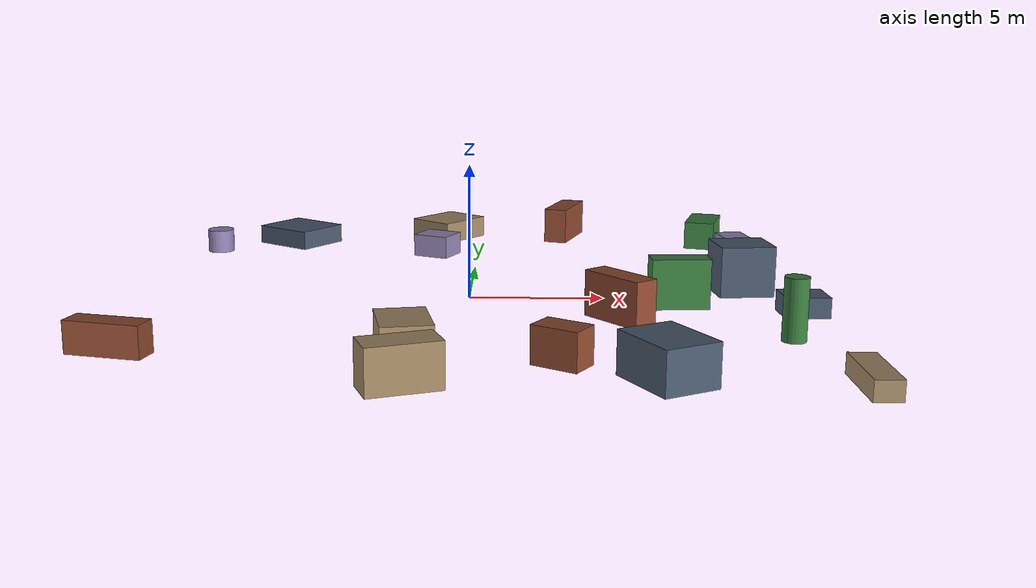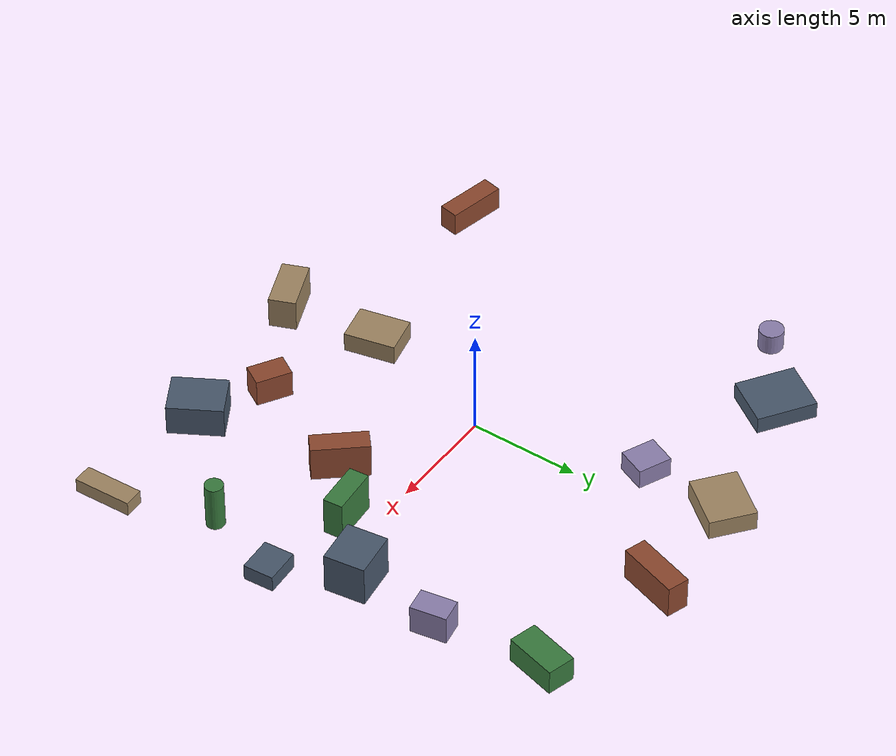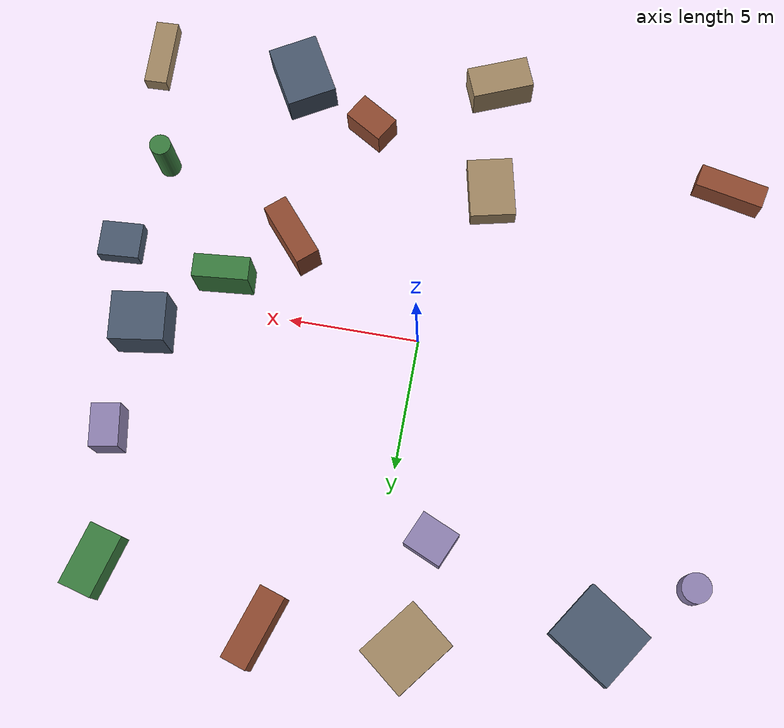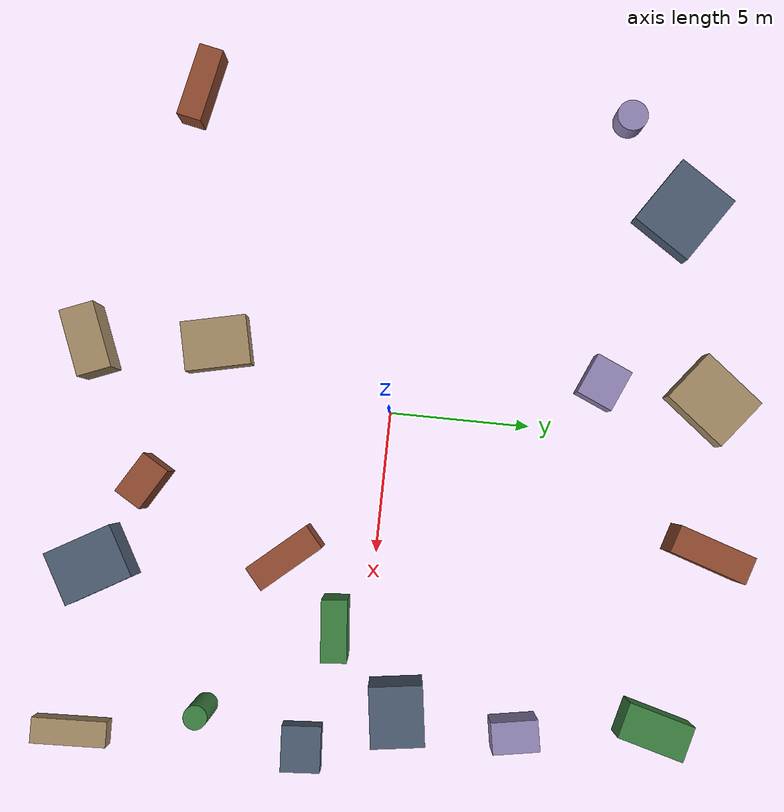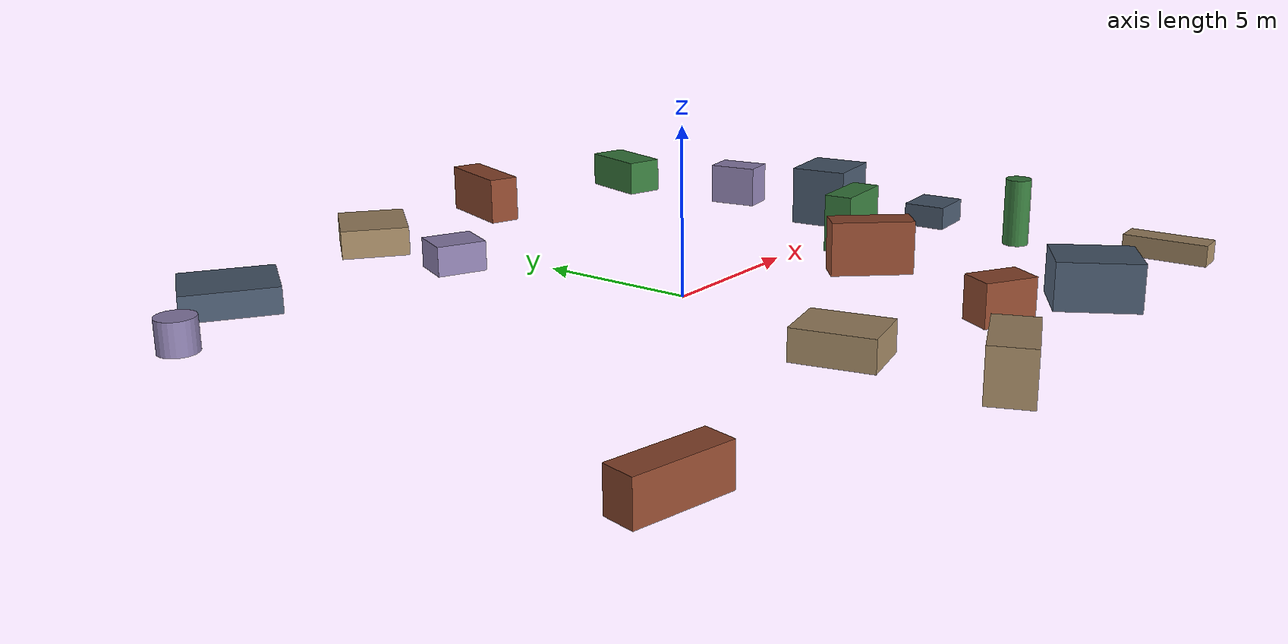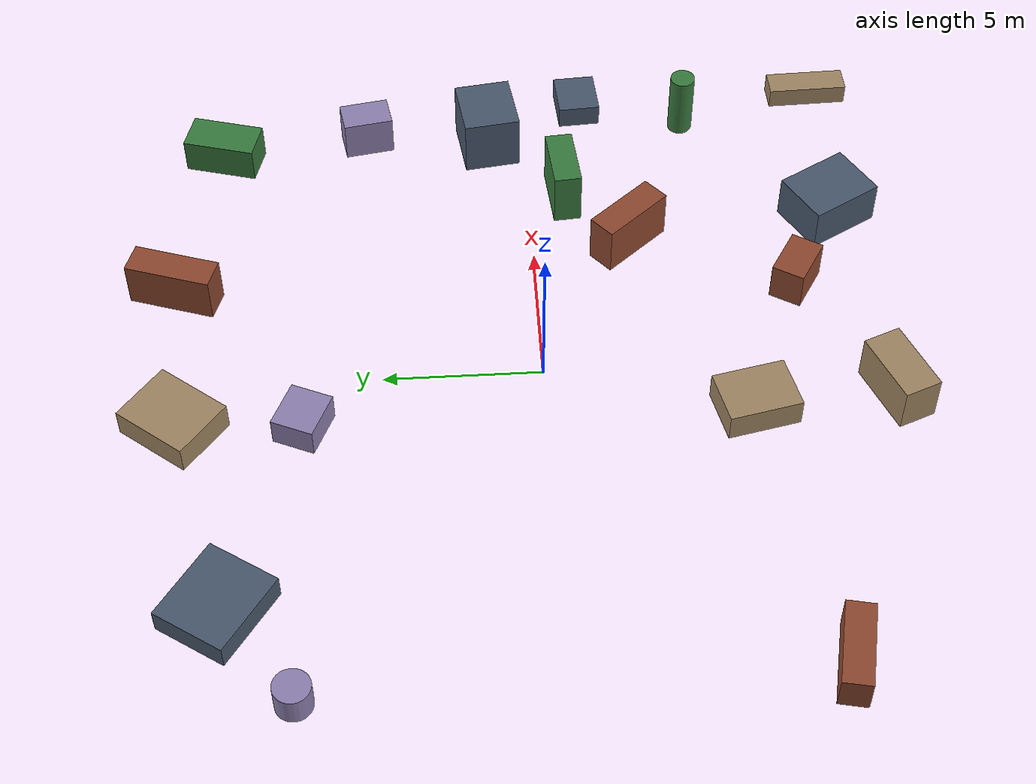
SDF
<sdf version="1.10">
 <world name="robotx_task1_uav_view">
  <gravity>0 0 -9.81</gravity>
  <physics name="physics" type="ode">
   <max_step_size>0.002</max_step_size>
   <real_time_factor>1.0</real_time_factor>
  </physics>
  <scene>
   <ambient>0.18 0.22 0.18 1.0</ambient>
   <background>0.35 0.55 0.40 1.0</background>
   <shadows>true</shadows>
   <grid>false</grid>
  </scene>
  <light name="sun" type="directional">
   <pose>0 0 300 0 0 0</pose>
   <diffuse>0.55 0.75 0.60 1.0</diffuse>
   <specular>0.28 0.45 0.32 1.0</specular>
   <direction>0.20 -0.06 -1.0</direction>
   <attenuation>
    <range>2500</range>
    <constant>0.85</constant>
    <linear>0.001</linear>
    <quadratic>0.00005</quadratic>
   </attenuation>
  </light>
  <plugin filename="gz-sim-physics-system" name="gz::sim::systems::Physics"/>
  <plugin filename="gz-sim-user-commands-system" name="gz::sim::systems::UserCommands"/>
  <plugin filename="gz-sim-scene-broadcaster-system" name="gz::sim::systems::SceneBroadcaster"/>
  <plugin filename="gz-sim-sensors-system" name="gz::sim::systems::Sensors">
   <render_engine>ogre2</render_engine>
  </plugin>
  <model name="scene_clutter_box_000">
   <static>true</static>
   <pose>12.218 -10.011 0.357 0 0 -1.536951</pose>
   <link name="link">
    <visual name="v">
     <geometry><box><size>2.641 0.891 0.675</size></box></geometry>
     <material><ambient>0.45 0.38 0.32 1.0</ambient><diffuse>0.62 0.52 0.38 1.0</diffuse></material>
    </visual>
   </link>
  </model>
  <model name="scene_clutter_box_001">
   <static>true</static>
   <pose>6.324 -9.820 0.737 0 0 -2.622603</pose>
   <link name="link">
    <visual name="v">
     <geometry><box><size>1.948 2.469 1.433</size></box></geometry>
     <material><ambient>0.18 0.22 0.28 1.0</ambient><diffuse>0.28 0.34 0.42 1.0</diffuse></material>
    </visual>
   </link>
  </model>
  <model name="scene_clutter_box_002">
   <static>true</static>
   <pose>3.827 11.567 0.777 0 0 -1.888255</pose>
   <link name="link">
    <visual name="v">
     <geometry><box><size>2.803 0.992 1.515</size></box></geometry>
     <material><ambient>0.35 0.16 0.12 1.0</ambient><diffuse>0.55 0.28 0.18 1.0</diffuse></material>
    </visual>
   </link>
  </model>
  <model name="scene_clutter_box_003">
   <static>true</static>
   <pose>10.073 10.220 0.610 0 0 -0.265980</pose>
   <link name="link">
    <visual name="v">
     <geometry><box><size>1.269 2.385 1.180</size></box></geometry>
     <material><ambient>0.12 0.30 0.14 1.0</ambient><diffuse>0.22 0.48 0.24 1.0</diffuse></material>
    </visual>
   </link>
  </model>
  <model name="scene_clutter_box_004">
   <static>true</static>
   <pose>-1.790 7.430 0.485 0 0 -0.414090</pose>
   <link name="link">
    <visual name="v">
     <geometry><box><size>1.548 1.366 0.929</size></box></geometry>
     <material><ambient>0.40 0.35 0.50 1.0</ambient><diffuse>0.55 0.50 0.68 1.0</diffuse></material>
    </visual>
   </link>
  </model>
  <model name="scene_clutter_box_005">
   <static>true</static>
   <pose>-1.814 -6.374 0.479 0 0 1.787820</pose>
   <link name="link">
    <visual name="v">
     <geometry><box><size>2.334 1.764 0.919</size></box></geometry>
     <material><ambient>0.45 0.38 0.32 1.0</ambient><diffuse>0.62 0.52 0.38 1.0</diffuse></material>
    </visual>
   </link>
  </model>
  <model name="scene_clutter_box_006">
   <static>true</static>
   <pose>11.963 -1.905 0.396 0 0 -3.077153</pose>
   <link name="link">
    <visual name="v">
     <geometry><box><size>1.593 1.379 0.751</size></box></geometry>
     <material><ambient>0.18 0.22 0.28 1.0</ambient><diffuse>0.28 0.34 0.42 1.0</diffuse></material>
    </visual>
   </link>
  </model>
  <model name="scene_clutter_box_007">
   <static>true</static>
   <pose>3.269 -8.334 0.664 0 0 -0.538725</pose>
   <link name="link">
    <visual name="v">
     <geometry><box><size>1.640 1.068 1.288</size></box></geometry>
     <material><ambient>0.35 0.16 0.12 1.0</ambient><diffuse>0.55 0.28 0.18 1.0</diffuse></material>
    </visual>
   </link>
  </model>
  <model name="scene_clutter_cyl_008">
   <static>true</static>
   <pose>10.907 -5.434 1.133 0 0 1.751120</pose>
   <link name="link">
    <visual name="v">
     <geometry><cylinder><radius>0.410</radius><length>2.166</length></cylinder></geometry>
     <material><ambient>0.12 0.30 0.14 1.0</ambient><diffuse>0.22 0.48 0.24 1.0</diffuse></material>
    </visual>
   </link>
  </model>
  <model name="scene_clutter_box_009">
   <static>true</static>
   <pose>10.679 5.389 0.700 0 0 0.167667</pose>
   <link name="link">
    <visual name="v">
     <geometry><box><size>1.084 1.626 1.359</size></box></geometry>
     <material><ambient>0.40 0.35 0.50 1.0</ambient><diffuse>0.55 0.50 0.68 1.0</diffuse></material>
    </visual>
   </link>
  </model>
  <model name="scene_clutter_box_010">
   <static>true</static>
   <pose>-1.452 -10.805 0.766 0 0 0.383314</pose>
   <link name="link">
    <visual name="v">
     <geometry><box><size>2.401 1.227 1.492</size></box></geometry>
     <material><ambient>0.45 0.38 0.32 1.0</ambient><diffuse>0.62 0.52 0.38 1.0</diffuse></material>
    </visual>
   </link>
  </model>
  <model name="scene_clutter_box_011">
   <static>true</static>
   <pose>10.285 1.271 0.977 0 0 0.136847</pose>
   <link name="link">
    <visual name="v">
     <geometry><box><size>2.062 1.844 1.914</size></box></geometry>
     <material><ambient>0.18 0.22 0.28 1.0</ambient><diffuse>0.28 0.34 0.42 1.0</diffuse></material>
    </visual>
   </link>
  </model>
  <model name="scene_clutter_box_012">
   <static>true</static>
   <pose>-11.013 -7.904 0.577 0 0 -0.203225</pose>
   <link name="link">
    <visual name="v">
     <geometry><box><size>2.667 0.893 1.114</size></box></geometry>
     <material><ambient>0.35 0.16 0.12 1.0</ambient><diffuse>0.55 0.28 0.18 1.0</diffuse></material>
    </visual>
   </link>
  </model>
  <model name="scene_clutter_box_013">
   <static>true</static>
   <pose>7.662 -1.128 0.944 0 0 0.087161</pose>
   <link name="link">
    <visual name="v">
     <geometry><box><size>2.129 0.892 1.849</size></box></geometry>
     <material><ambient>0.12 0.30 0.14 1.0</ambient><diffuse>0.22 0.48 0.24 1.0</diffuse></material>
    </visual>
   </link>
  </model>
  <model name="scene_clutter_cyl_014">
   <static>true</static>
   <pose>-11.397 7.570 0.528 0 0 0.098097</pose>
   <link name="link">
    <visual name="v">
     <geometry><cylinder><radius>0.555</radius><length>0.957</length></cylinder></geometry>
     <material><ambient>0.40 0.35 0.50 1.0</ambient><diffuse>0.55 0.50 0.68 1.0</diffuse></material>
    </visual>
   </link>
  </model>
  <model name="scene_clutter_box_015">
   <static>true</static>
   <pose>-1.560 11.354 0.472 0 0 2.474384</pose>
   <link name="link">
    <visual name="v">
     <geometry><box><size>2.105 2.555 0.904</size></box></geometry>
     <material><ambient>0.45 0.38 0.32 1.0</ambient><diffuse>0.62 0.52 0.38 1.0</diffuse></material>
    </visual>
   </link>
  </model>
  <model name="scene_clutter_box_016">
   <static>true</static>
   <pose>-8.243 9.762 0.414 0 0 -0.590319</pose>
   <link name="link">
    <visual name="v">
     <geometry><box><size>2.745 2.387 0.788</size></box></geometry>
     <material><ambient>0.18 0.22 0.28 1.0</ambient><diffuse>0.28 0.34 0.42 1.0</diffuse></material>
    </visual>
   </link>
  </model>
  <model name="scene_clutter_box_017">
   <static>true</static>
   <pose>5.395 -3.099 0.848 0 0 -2.430260</pose>
   <link name="link">
    <visual name="v">
     <geometry><box><size>0.944 2.536 1.657</size></box></geometry>
     <material><ambient>0.35 0.16 0.12 1.0</ambient><diffuse>0.55 0.28 0.18 1.0</diffuse></material>
    </visual>
   </link>
  </model>
  <model name="uav_dataset_camera">
   <static>false</static>
   <pose>0 0 26 0 0 0</pose>
   <plugin filename="librobotx_overhead_motion_plugin.dylib" name="robotx::OverheadMotionPlugin">
    <radius_x_m>12.95298</radius_x_m>
    <radius_y_m>10.13747</radius_y_m>
    <angular_speed_rad_s>0.066416</angular_speed_rad_s>
    <phase_rad>2.442519</phase_rad>
    <z_wobble_m>0.10721</z_wobble_m>
    <z_wobble_hz>0.03782</z_wobble_hz>
    <z_wobble_phase_rad>0.363910</z_wobble_phase_rad>
   </plugin>
   <link name="camera_link">
    <gravity>false</gravity>
    <sensor name="top_down_rgb" type="camera">
     <always_on>true</always_on>
     <update_rate>20</update_rate>
     <pose>0 0 0 0 1.57079632679 0</pose>
     <camera>
      <horizontal_fov>1.05</horizontal_fov>
      <image><width>1920</width><height>1080</height><format>R8G8B8</format></image>
      <clip><near>0.2</near><far>600</far></clip>
     </camera>
     <topic>/robotx/uav/camera/image_raw</topic>
     <visualize>true</visualize>
    </sensor>
   </link>
  </model>
 </world>
</sdf>
